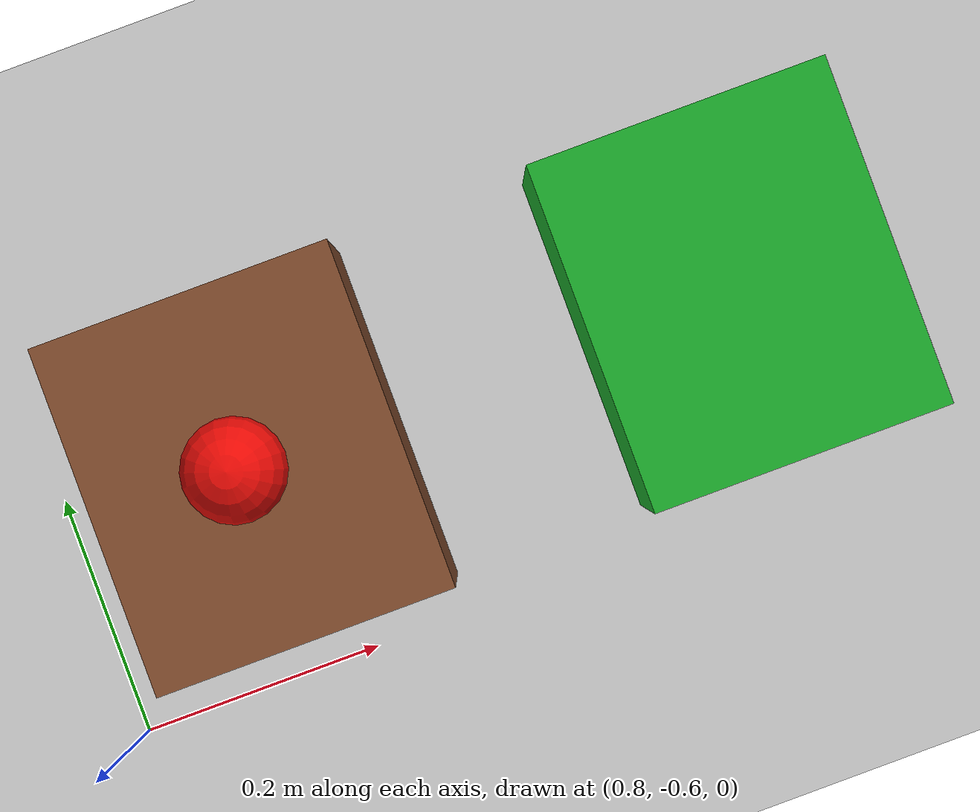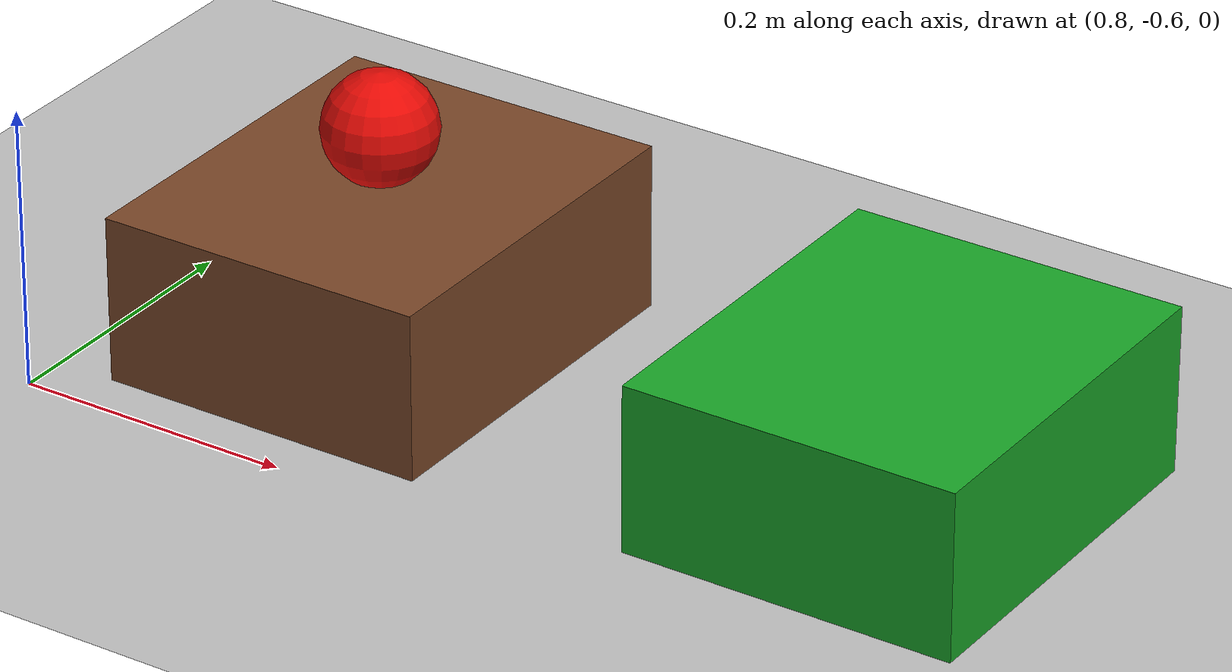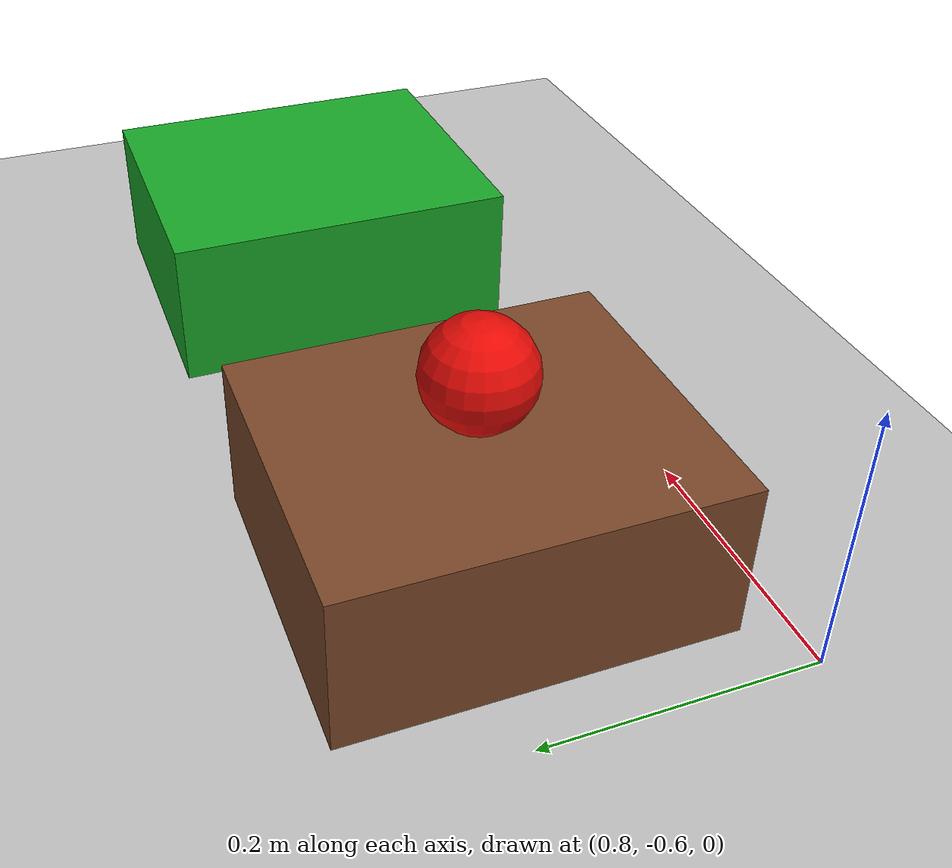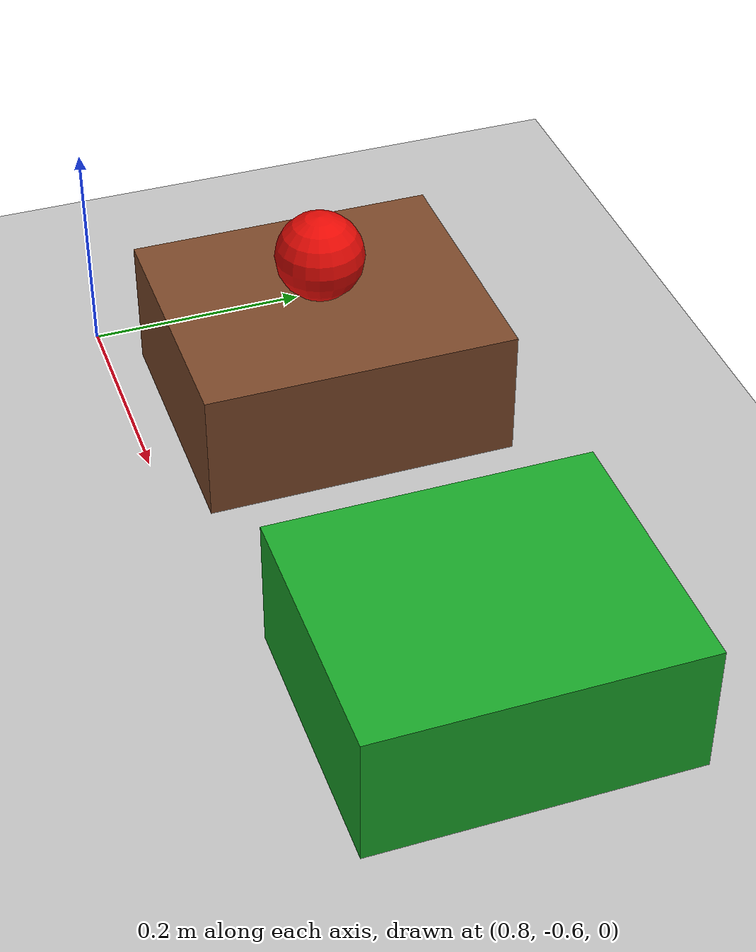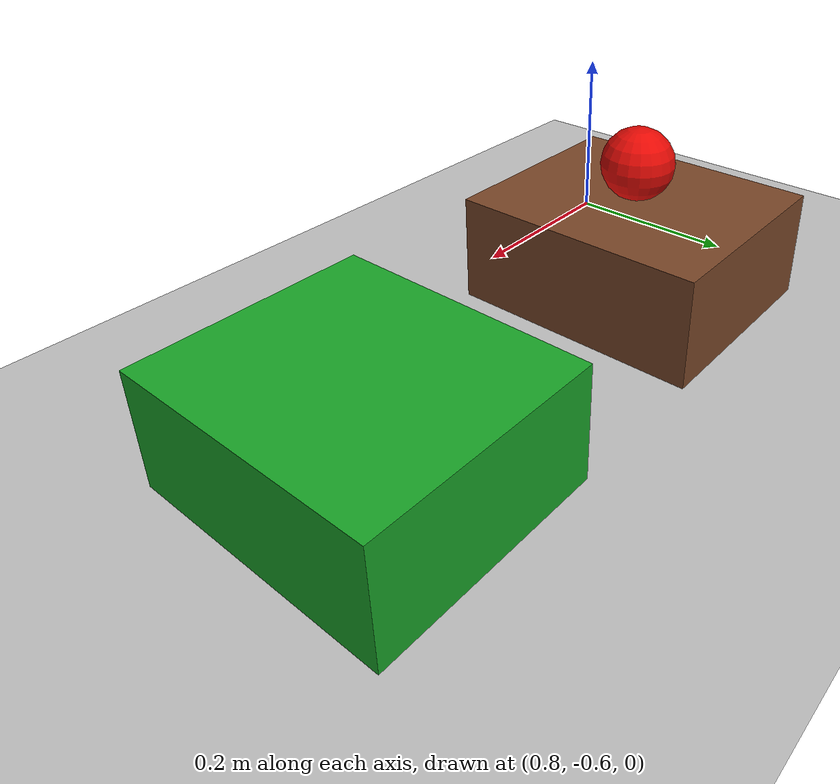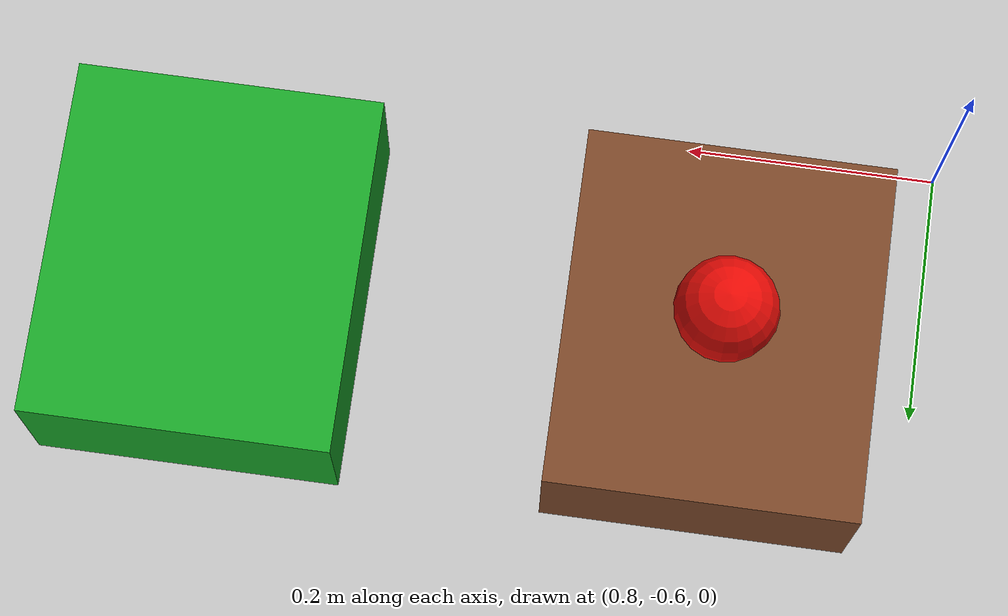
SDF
<?xml version="1.0"?>
<sdf version="1.10">
  <world name="task_tables">
    <physics name="1ms" type="ignored">
      <max_step_size>0.001</max_step_size>
      <real_time_factor>1.0</real_time_factor>
    </physics>
    <plugin filename="gz-sim-physics-system" name="gz::sim::systems::Physics"/>
    <plugin filename="gz-sim-user-commands-system" name="gz::sim::systems::UserCommands"/>
    <plugin filename="gz-sim-scene-broadcaster-system" name="gz::sim::systems::SceneBroadcaster"/>
    <plugin filename="aha_task_evaluation" name="aha_sim_tasks::EvaluationSystem"/>
    <light type="directional" name="sun">
      <pose>0 0 10 0 0 0</pose>
      <diffuse>0.8 0.8 0.8 1</diffuse>
      <direction>-0.5 0.1 -0.9</direction>
    </light>
    <model name="ground_plane">
      <static>true</static>
      <link name="link">
        <collision name="collision">
          <geometry><plane><normal>0 0 1</normal><size>5 5</size></plane></geometry>
        </collision>
        <visual name="visual">
          <geometry><plane><normal>0 0 1</normal><size>5 5</size></plane></geometry>
          <material><ambient>0.65 0.65 0.65 1</ambient><diffuse>0.75 0.75 0.75 1</diffuse></material>
        </visual>
      </link>
    </model>
    <model name="source_table">
      <static>true</static>
      <pose>0.962 -0.426 0.06 0 0 0</pose>
      <link name="top">
        <collision name="collision"><geometry><box><size>0.24 0.28 0.12</size></box></geometry></collision>
        <visual name="visual">
          <geometry><box><size>0.24 0.28 0.12</size></box></geometry>
          <material><ambient>0.38 0.22 0.12 1</ambient><diffuse>0.48 0.28 0.16 1</diffuse></material>
        </visual>
      </link>
    </model>
    <model name="destination_table">
      <static>true</static>
      <pose>1.362 -0.426 0.06 0 0 0</pose>
      <link name="top">
        <collision name="collision"><geometry><box><size>0.24 0.28 0.12</size></box></geometry></collision>
        <visual name="visual">
          <geometry><box><size>0.24 0.28 0.12</size></box></geometry>
          <material><ambient>0.08 0.45 0.12 1</ambient><diffuse>0.10 0.65 0.16 1</diffuse></material>
        </visual>
      </link>
    </model>
    <model name="apple">
      <pose>0.962 -0.426 0.16 0 0 0</pose>
      <link name="link">
        <inertial>
          <mass>0.08</mass>
          <inertia>
            <ixx>0.0000512</ixx><iyy>0.0000512</iyy><izz>0.0000512</izz>
            <ixy>0</ixy><ixz>0</ixz><iyz>0</iyz>
          </inertia>
        </inertial>
        <collision name="fruit_collision">
          <geometry><sphere><radius>0.04</radius></sphere></geometry>
          <surface><friction><ode><mu>1.0</mu><mu2>1.0</mu2></ode></friction></surface>
        </collision>
        <visual name="fruit_visual">
          <geometry><sphere><radius>0.04</radius></sphere></geometry>
          <material><ambient>0.65 0.03 0.02 1</ambient><diffuse>0.90 0.04 0.02 1</diffuse></material>
        </visual>
      </link>
    </model>
  </world>
</sdf>
